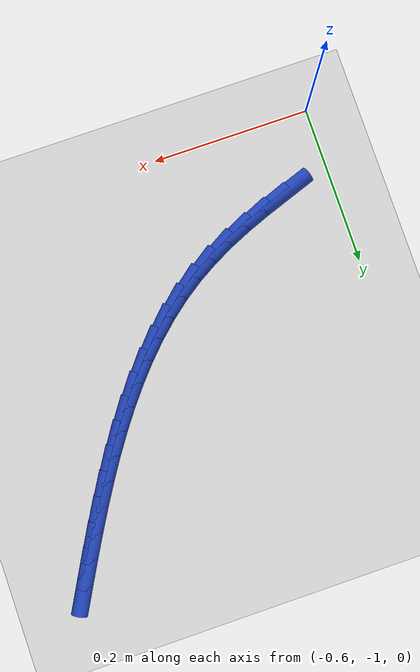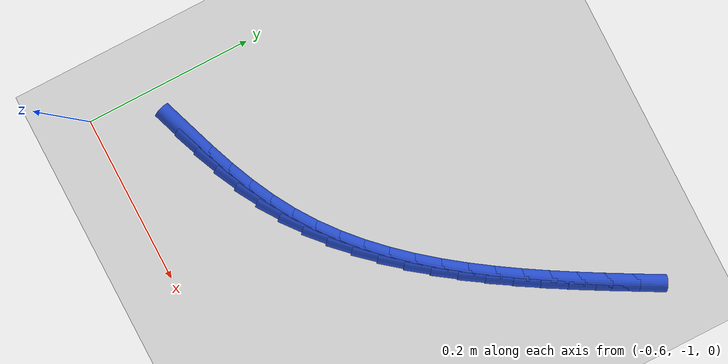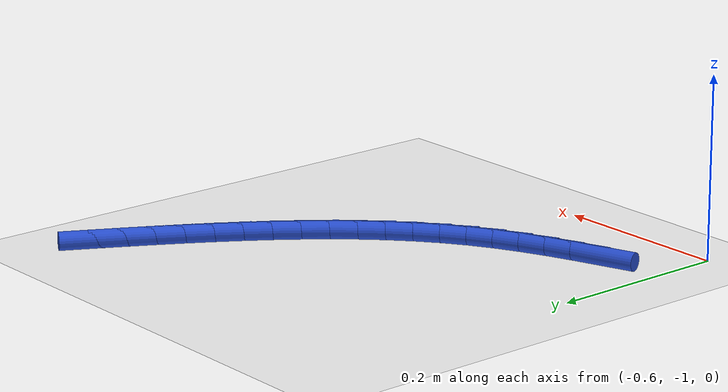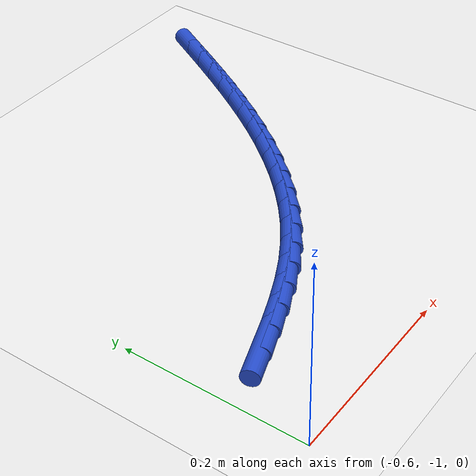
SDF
<sdf version="1.6">
 <world name="default">
  <model name="ground_plane">
   <static>1</static>
   <link name="link">
    <collision name="collision">
     <geometry><plane><normal>0 0 1</normal><size>100 100</size></plane></geometry>
     <surface><friction><ode><mu>100</mu><mu2>50</mu2></ode></friction></surface>
    </collision>
    <visual name="visual">
     <cast_shadows>0</cast_shadows>
     <geometry><plane><normal>0 0 1</normal><size>100 100</size></plane></geometry>
     <material>
      <script><uri>file://media/materials/scripts/gazebo.material</uri><name>Gazebo/WhiteGlow</name></script>
     </material>
    </visual>
   </link>
  </model>
  <model name="line">
   <link name="link_183">
    <pose>-0.5358517768321505 -0.9071032816006378 0.01 0 1.57 0.34023618953553136</pose>
    <collision name="collision">
     <geometry><cylinder><radius>0.01</radius><length>0.08</length></cylinder></geometry>
    </collision>
    <visual name="visual">
     <material>
      <script><name>Gazebo/Blue</name><uri>file://media/materials/scripts/gazebo.material</uri></script>
     </material>
     <geometry><cylinder><radius>0.01</radius><length>0.08</length></cylinder></geometry>
    </visual>
   </link>
   <link name="link_184">
    <pose>-0.507333480364353 -0.897007729244999 0.01 0 1.57 0.3720200101487679</pose>
    <collision name="collision">
     <geometry><cylinder><radius>0.01</radius><length>0.08</length></cylinder></geometry>
    </collision>
    <visual name="visual">
     <material>
      <script><name>Gazebo/Blue</name><uri>file://media/materials/scripts/gazebo.material</uri></script>
     </material>
     <geometry><cylinder><radius>0.01</radius><length>0.08</length></cylinder></geometry>
    </visual>
   </link>
   <link name="link_185">
    <pose>-0.4793686993304159 -0.8860961825675273 0.01 0 1.57 0.41440316121036397</pose>
    <collision name="collision">
     <geometry><cylinder><radius>0.01</radius><length>0.08</length></cylinder></geometry>
    </collision>
    <visual name="visual">
     <material>
      <script><name>Gazebo/Blue</name><uri>file://media/materials/scripts/gazebo.material</uri></script>
     </material>
     <geometry><cylinder><radius>0.01</radius><length>0.08</length></cylinder></geometry>
    </visual>
   </link>
   <link name="link_186">
    <pose>-0.4521339597403705 -0.8741162684446842 0.01 0 1.57 0.46778872655223197</pose>
    <collision name="collision">
     <geometry><cylinder><radius>0.01</radius><length>0.08</length></cylinder></geometry>
    </collision>
    <visual name="visual">
     <material>
      <script><name>Gazebo/Blue</name><uri>file://media/materials/scripts/gazebo.material</uri></script>
     </material>
     <geometry><cylinder><radius>0.01</radius><length>0.08</length></cylinder></geometry>
    </visual>
   </link>
   <link name="link_187">
    <pose>-0.42580578760424975 -0.8608156137529331 0.01 0 1.57 0.5324218920348983</pose>
    <collision name="collision">
     <geometry><cylinder><radius>0.01</radius><length>0.08</length></cylinder></geometry>
    </collision>
    <visual name="visual">
     <material>
      <script><name>Gazebo/Blue</name><uri>file://media/materials/scripts/gazebo.material</uri></script>
     </material>
     <geometry><cylinder><radius>0.01</radius><length>0.08</length></cylinder></geometry>
    </visual>
   </link>
   <link name="link_188">
    <pose>-0.40056070893208406 -0.8459418453687354 0.01 0 1.57 0.6058773144695971</pose>
    <collision name="collision">
     <geometry><cylinder><radius>0.01</radius><length>0.08</length></cylinder></geometry>
    </collision>
    <visual name="visual">
     <material>
      <script><name>Gazebo/Blue</name><uri>file://media/materials/scripts/gazebo.material</uri></script>
     </material>
     <geometry><cylinder><radius>0.01</radius><length>0.08</length></cylinder></geometry>
    </visual>
   </link>
   <link name="link_189">
    <pose>-0.3765391080647292 -0.8292996828640078 0.01 0 1.57 0.6767588923734977</pose>
    <collision name="collision">
     <geometry><cylinder><radius>0.01</radius><length>0.08</length></cylinder></geometry>
    </collision>
    <visual name="visual">
     <material>
      <script><name>Gazebo/Blue</name><uri>file://media/materials/scripts/gazebo.material</uri></script>
     </material>
     <geometry><cylinder><radius>0.01</radius><length>0.08</length></cylinder></geometry>
    </visual>
   </link>
   <link name="link_190">
    <pose>-0.35371160885884334 -0.8109620150415177 0.01 0 1.57 0.741407063343093</pose>
    <collision name="collision">
     <geometry><cylinder><radius>0.01</radius><length>0.08</length></cylinder></geometry>
    </collision>
    <visual name="visual">
     <material>
      <script><name>Gazebo/Blue</name><uri>file://media/materials/scripts/gazebo.material</uri></script>
     </material>
     <geometry><cylinder><radius>0.01</radius><length>0.08</length></cylinder></geometry>
    </visual>
   </link>
   <link name="link_191">
    <pose>-0.3319990361691651 -0.7910803977749093 0.01 0 1.57 0.7996322658320579</pose>
    <collision name="collision">
     <geometry><cylinder><radius>0.01</radius><length>0.08</length></cylinder></geometry>
    </collision>
    <visual name="visual">
     <material>
      <script><name>Gazebo/Blue</name><uri>file://media/materials/scripts/gazebo.material</uri></script>
     </material>
     <geometry><cylinder><radius>0.01</radius><length>0.08</length></cylinder></geometry>
    </visual>
   </link>
   <link name="link_192">
    <pose>-0.31132220833863583 -0.769806397224454 0.01 0 1.57 0.851468486149359</pose>
    <collision name="collision">
     <geometry><cylinder><radius>0.01</radius><length>0.08</length></cylinder></geometry>
    </collision>
    <visual name="visual">
     <material>
      <script><name>Gazebo/Blue</name><uri>file://media/materials/scripts/gazebo.material</uri></script>
     </material>
     <geometry><cylinder><radius>0.01</radius><length>0.08</length></cylinder></geometry>
    </visual>
   </link>
   <link name="link_193">
    <pose>-0.2916019437101979 -0.7472915795504248 0.01 0 1.57 0.897099167090383</pose>
    <collision name="collision">
     <geometry><cylinder><radius>0.01</radius><length>0.08</length></cylinder></geometry>
    </collision>
    <visual name="visual">
     <material>
      <script><name>Gazebo/Blue</name><uri>file://media/materials/scripts/gazebo.material</uri></script>
     </material>
     <geometry><cylinder><radius>0.01</radius><length>0.08</length></cylinder></geometry>
    </visual>
   </link>
   <link name="link_194">
    <pose>-0.2727590606267929 -0.7236875109130937 0.01 0 1.57 0.9367927488366029</pose>
    <collision name="collision">
     <geometry><cylinder><radius>0.01</radius><length>0.08</length></cylinder></geometry>
    </collision>
    <visual name="visual">
     <material>
      <script><name>Gazebo/Blue</name><uri>file://media/materials/scripts/gazebo.material</uri></script>
     </material>
     <geometry><cylinder><radius>0.01</radius><length>0.08</length></cylinder></geometry>
    </visual>
   </link>
   <link name="link_195">
    <pose>-0.25471437743136305 -0.6991457574727337 0.01 0 1.57 0.9708518552817625</pose>
    <collision name="collision">
     <geometry><cylinder><radius>0.01</radius><length>0.08</length></cylinder></geometry>
    </collision>
    <visual name="visual">
     <material>
      <script><name>Gazebo/Blue</name><uri>file://media/materials/scripts/gazebo.material</uri></script>
     </material>
     <geometry><cylinder><radius>0.01</radius><length>0.08</length></cylinder></geometry>
    </visual>
   </link>
   <link name="link_196">
    <pose>-0.23738871246685084 -0.6738178853896174 0.01 0 1.57 0.9995760941979884</pose>
    <collision name="collision">
     <geometry><cylinder><radius>0.01</radius><length>0.08</length></cylinder></geometry>
    </collision>
    <visual name="visual">
     <material>
      <script><name>Gazebo/Blue</name><uri>file://media/materials/scripts/gazebo.material</uri></script>
     </material>
     <geometry><cylinder><radius>0.01</radius><length>0.08</length></cylinder></geometry>
    </visual>
   </link>
   <link name="link_197">
    <pose>-0.22070288407619795 -0.6478554608240173 0.01 0 1.57 1.0232362152236696</pose>
    <collision name="collision">
     <geometry><cylinder><radius>0.01</radius><length>0.08</length></cylinder></geometry>
    </collision>
    <visual name="visual">
     <material>
      <script><name>Gazebo/Blue</name><uri>file://media/materials/scripts/gazebo.material</uri></script>
     </material>
     <geometry><cylinder><radius>0.01</radius><length>0.08</length></cylinder></geometry>
    </visual>
   </link>
   <link name="link_198">
    <pose>-0.20457771060234667 -0.6214100499362061 0.01 0 1.57 1.042056681903769</pose>
    <collision name="collision">
     <geometry><cylinder><radius>0.01</radius><length>0.08</length></cylinder></geometry>
    </collision>
    <visual name="visual">
     <material>
      <script><name>Gazebo/Blue</name><uri>file://media/materials/scripts/gazebo.material</uri></script>
     </material>
     <geometry><cylinder><radius>0.01</radius><length>0.08</length></cylinder></geometry>
    </visual>
   </link>
   <link name="link_199">
    <pose>-0.1889340103882384 -0.594633218886455 0.01 0 1.57 1.056203849507758</pose>
    <collision name="collision">
     <geometry><cylinder><radius>0.01</radius><length>0.08</length></cylinder></geometry>
    </collision>
    <visual name="visual">
     <material>
      <script><name>Gazebo/Blue</name><uri>file://media/materials/scripts/gazebo.material</uri></script>
     </material>
     <geometry><cylinder><radius>0.01</radius><length>0.08</length></cylinder></geometry>
    </visual>
   </link>
   <link name="link_200">
    <pose>-0.1736926017768161 -0.5676765338350387 0.01 0 1.57 1.0657774019400337</pose>
    <collision name="collision">
     <geometry><cylinder><radius>0.01</radius><length>0.08</length></cylinder></geometry>
    </collision>
    <visual name="visual">
     <material>
      <script><name>Gazebo/Blue</name><uri>file://media/materials/scripts/gazebo.material</uri></script>
     </material>
     <geometry><cylinder><radius>0.01</radius><length>0.08</length></cylinder></geometry>
    </visual>
   </link>
   <link name="link_201">
    <pose>-0.15877430311102145 -0.5406915609422285 0.01 0 1.57 1.0720985386728608</pose>
    <collision name="collision">
     <geometry><cylinder><radius>0.01</radius><length>0.08</length></cylinder></geometry>
    </collision>
    <visual name="visual">
     <material>
      <script><name>Gazebo/Blue</name><uri>file://media/materials/scripts/gazebo.material</uri></script>
     </material>
     <geometry><cylinder><radius>0.01</radius><length>0.08</length></cylinder></geometry>
    </visual>
   </link>
  </model>
 </world>
</sdf>
